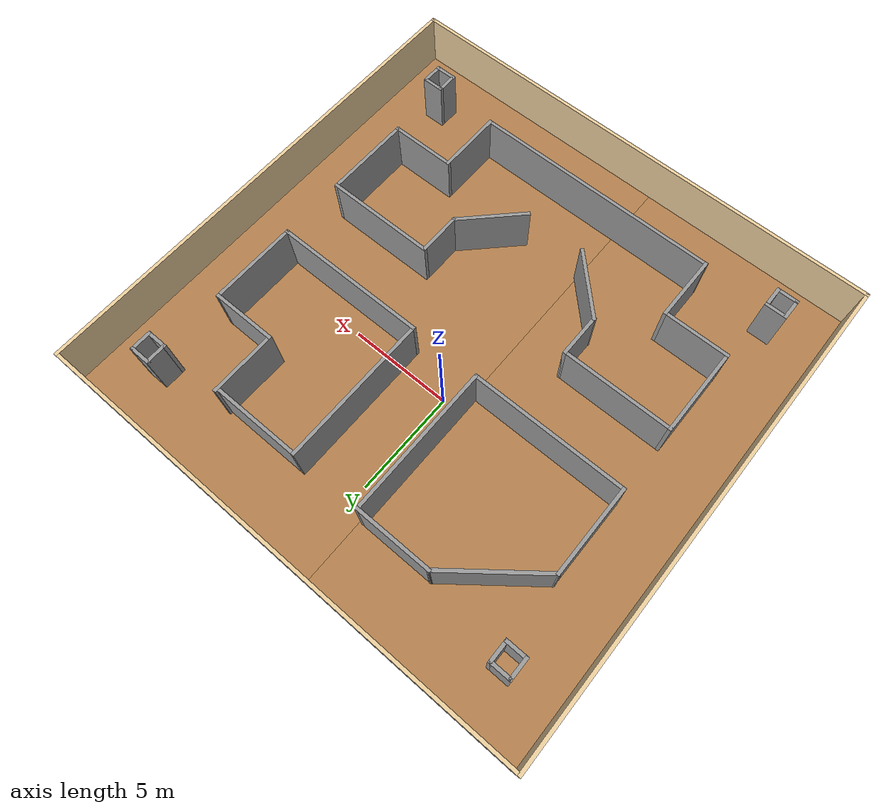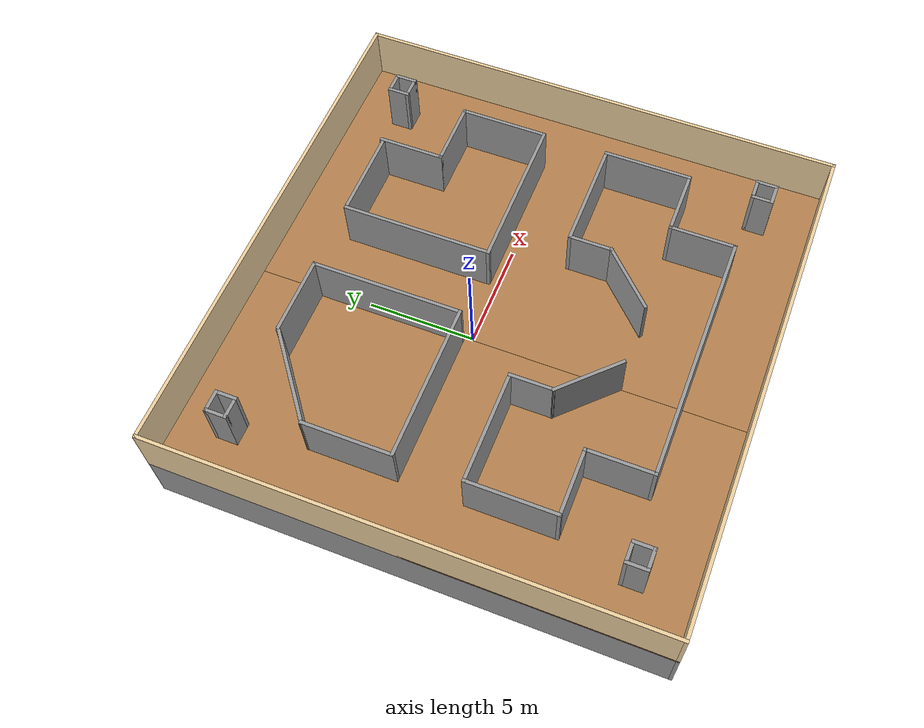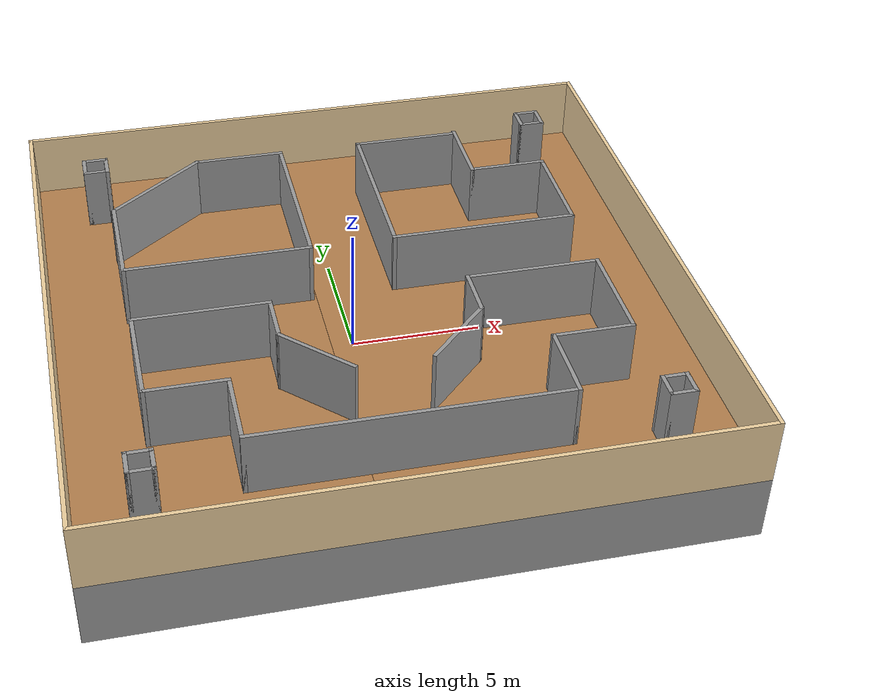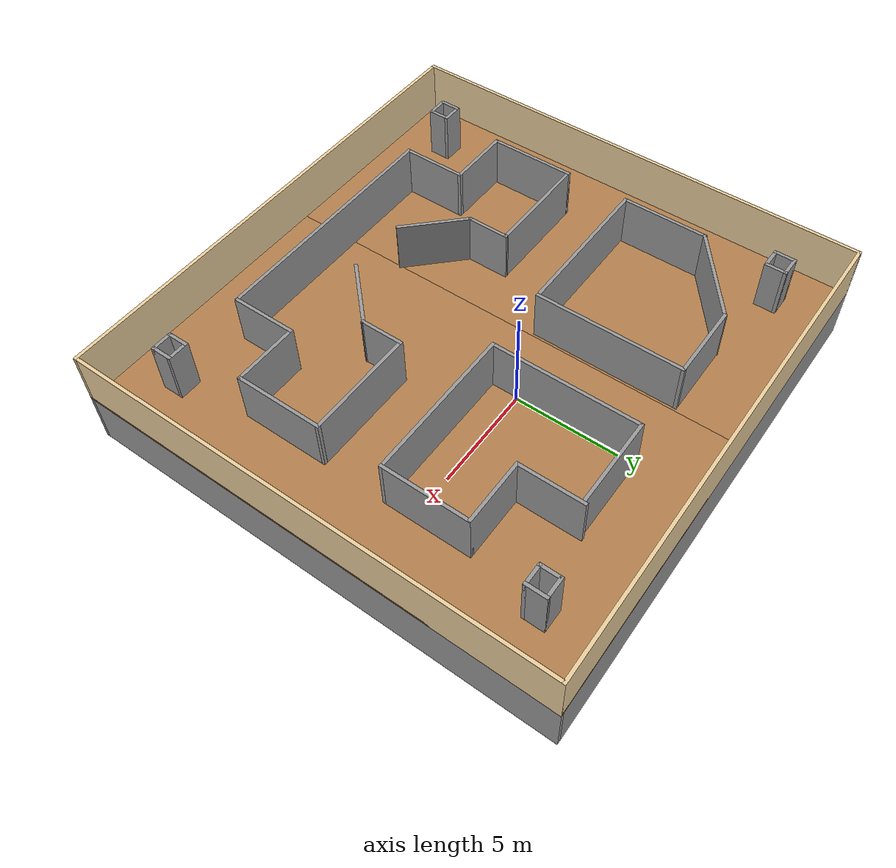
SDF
<sdf version="1.6">
 <world name="default">
  <gravity>0 0 -9.8</gravity>
  <model name="Test_Walls">
   <link name="Floor_6">
    <pose>0 -1.70356 2.5 0 -0 0</pose>
    <visual name="Floor_6_Visual_0">
     <pose>-6.40498 0 0.05 0 -0 0</pose>
     <geometry><box><size>9.94004 22.25 0.1</size></box></geometry>
     <material>
      <script><uri>file://media/materials/scripts/gazebo.material</uri><name>Gazebo/Wood</name></script>
      <ambient>0.756863 0.490196 0.0666667 1</ambient>
     </material>
     <meta><layer>1</layer></meta>
    </visual>
    <collision name="Floor_6_Collision_0">
     <geometry><box><size>9.94004 22.25 0.1</size></box></geometry>
     <pose>-6.40498 0 0.05 0 -0 0</pose>
    </collision>
    <visual name="Floor_6_Visual_1">
     <pose>4.97002 -0.04644 0.05 0 -0 0</pose>
     <geometry><box><size>12.81 22.1571 0.1</size></box></geometry>
     <material>
      <script><uri>file://media/materials/scripts/gazebo.material</uri><name>Gazebo/Wood</name></script>
      <ambient>0.756863 0.490196 0.0666667 1</ambient>
     </material>
     <meta><layer>1</layer></meta>
    </visual>
    <collision name="Floor_6_Collision_1">
     <geometry><box><size>12.81 22.1571 0.1</size></box></geometry>
     <pose>4.97002 -0.04644 0.05 0 -0 0</pose>
    </collision>
    <visual name="Floor_6_Visual_2">
     <pose>6.36213 11.0786 0.05 0 -0 0</pose>
     <geometry><box><size>10.0257 0.09288 0.1</size></box></geometry>
     <material>
      <script><uri>file://media/materials/scripts/gazebo.material</uri><name>Gazebo/Wood</name></script>
      <ambient>0.756863 0.490196 0.0666667 1</ambient>
     </material>
     <meta><layer>1</layer></meta>
    </visual>
    <collision name="Floor_6_Collision_2">
     <geometry><box><size>10.0257 0.09288 0.1</size></box></geometry>
     <pose>6.36213 11.0786 0.05 0 -0 0</pose>
    </collision>
   </link>
   <link name="Wall_105">
    <collision name="Wall_105_Collision">
     <geometry><box><size>22.75 0.15 2.5</size></box></geometry>
     <pose>0 0 1.25 0 -0 0</pose>
    </collision>
    <visual name="Wall_105_Visual">
     <pose>0 0 1.25 0 -0 0</pose>
     <geometry><box><size>22.75 0.15 2.5</size></box></geometry>
     <material>
      <script><uri>file://media/materials/scripts/gazebo.material</uri><name>Gazebo/Grey</name></script>
      <ambient>0.921569 0.807843 0.615686 1</ambient>
     </material>
     <meta><layer>1</layer></meta>
    </visual>
    <pose>0 9.34644 2.5 0 -0 0</pose>
   </link>
   <link name="Wall_175">
    <collision name="Wall_175_Collision">
     <geometry><box><size>1 0.15 2.5</size></box></geometry>
     <pose>0 0 1.25 0 -0 0</pose>
    </collision>
    <visual name="Wall_175_Visual">
     <pose>0 0 1.25 0 -0 0</pose>
     <geometry><box><size>1 0.15 2.5</size></box></geometry>
     <material>
      <script><uri>file://media/materials/scripts/gazebo.material</uri><name>Gazebo/Grey</name></script>
      <ambient>1 1 1 1</ambient>
     </material>
     <meta><layer>1</layer></meta>
    </visual>
    <pose>-8.46646 6.92092 2.5 0 -0 1.5708</pose>
   </link>
   <link name="Wall_176">
    <collision name="Wall_176_Collision">
     <geometry><box><size>1 0.15 2.5</size></box></geometry>
     <pose>0 0 1.25 0 -0 0</pose>
    </collision>
    <visual name="Wall_176_Visual">
     <pose>0 0 1.25 0 -0 0</pose>
     <geometry><box><size>1 0.15 2.5</size></box></geometry>
     <material>
      <script><uri>file://media/materials/scripts/gazebo.material</uri><name>Gazebo/Grey</name></script>
      <ambient>1 1 1 1</ambient>
     </material>
     <meta><layer>1</layer></meta>
    </visual>
    <pose>-8.89146 7.34592 2.5 0 -0 3.14159</pose>
   </link>
   <link name="Wall_177">
    <collision name="Wall_177_Collision">
     <geometry><box><size>1 0.15 2.5</size></box></geometry>
     <pose>0 0 1.25 0 -0 0</pose>
    </collision>
    <visual name="Wall_177_Visual">
     <pose>0 0 1.25 0 -0 0</pose>
     <geometry><box><size>1 0.15 2.5</size></box></geometry>
     <material>
      <script><uri>file://media/materials/scripts/gazebo.material</uri><name>Gazebo/Grey</name></script>
      <ambient>1 1 1 1</ambient>
     </material>
     <meta><layer>1</layer></meta>
    </visual>
    <pose>-9.31646 6.92092 2.5 0 -0 -1.5708</pose>
   </link>
   <link name="Wall_178">
    <collision name="Wall_178_Collision">
     <geometry><box><size>1 0.15 2.5</size></box></geometry>
     <pose>0 0 1.25 0 -0 0</pose>
    </collision>
    <visual name="Wall_178_Visual">
     <pose>0 0 1.25 0 -0 0</pose>
     <geometry><box><size>1 0.15 2.5</size></box></geometry>
     <material>
      <script><uri>file://media/materials/scripts/gazebo.material</uri><name>Gazebo/Grey</name></script>
      <ambient>1 1 1 1</ambient>
     </material>
     <meta><layer>1</layer></meta>
    </visual>
    <pose>-8.89146 6.49592 2.5 0 -0 0</pose>
   </link>
   <link name="Wall_180">
    <collision name="Wall_180_Collision">
     <geometry><box><size>1 0.15 2.5</size></box></geometry>
     <pose>0 0 1.25 0 -0 0</pose>
    </collision>
    <visual name="Wall_180_Visual">
     <pose>0 0 1.25 0 -0 0</pose>
     <geometry><box><size>1 0.15 2.5</size></box></geometry>
     <material>
      <script><uri>file://media/materials/scripts/gazebo.material</uri><name>Gazebo/Grey</name></script>
      <ambient>1 1 1 1</ambient>
     </material>
     <meta><layer>1</layer></meta>
    </visual>
    <pose>8.38354 6.92092 2.5 0 -0 1.5708</pose>
   </link>
   <link name="Wall_181">
    <collision name="Wall_181_Collision">
     <geometry><box><size>1 0.15 2.5</size></box></geometry>
     <pose>0 0 1.25 0 -0 0</pose>
    </collision>
    <visual name="Wall_181_Visual">
     <pose>0 0 1.25 0 -0 0</pose>
     <geometry><box><size>1 0.15 2.5</size></box></geometry>
     <material>
      <script><uri>file://media/materials/scripts/gazebo.material</uri><name>Gazebo/Grey</name></script>
      <ambient>1 1 1 1</ambient>
     </material>
     <meta><layer>1</layer></meta>
    </visual>
    <pose>8.80854 7.34592 2.5 0 -0 0</pose>
   </link>
   <link name="Wall_182">
    <collision name="Wall_182_Collision">
     <geometry><box><size>1 0.15 2.5</size></box></geometry>
     <pose>0 0 1.25 0 -0 0</pose>
    </collision>
    <visual name="Wall_182_Visual">
     <pose>0 0 1.25 0 -0 0</pose>
     <geometry><box><size>1 0.15 2.5</size></box></geometry>
     <material>
      <script><uri>file://media/materials/scripts/gazebo.material</uri><name>Gazebo/Grey</name></script>
      <ambient>1 1 1 1</ambient>
     </material>
     <meta><layer>1</layer></meta>
    </visual>
    <pose>9.23354 6.92092 2.5 0 -0 -1.5708</pose>
   </link>
   <link name="Wall_183">
    <collision name="Wall_183_Collision">
     <geometry><box><size>1 0.15 2.5</size></box></geometry>
     <pose>0 0 1.25 0 -0 0</pose>
    </collision>
    <visual name="Wall_183_Visual">
     <pose>0 0 1.25 0 -0 0</pose>
     <geometry><box><size>1 0.15 2.5</size></box></geometry>
     <material>
      <script><uri>file://media/materials/scripts/gazebo.material</uri><name>Gazebo/Grey</name></script>
      <ambient>1 1 1 1</ambient>
     </material>
     <meta><layer>1</layer></meta>
    </visual>
    <pose>8.80854 6.49592 2.5 0 -0 3.14159</pose>
   </link>
   <link name="Wall_185">
    <collision name="Wall_185_Collision">
     <geometry><box><size>1 0.15 2.5</size></box></geometry>
     <pose>0 0 1.25 0 -0 0</pose>
    </collision>
    <visual name="Wall_185_Visual">
     <pose>0 0 1.25 0 -0 0</pose>
     <geometry><box><size>1 0.15 2.5</size></box></geometry>
     <material>
      <script><uri>file://media/materials/scripts/gazebo.material</uri><name>Gazebo/Grey</name></script>
      <ambient>1 1 1 1</ambient>
     </material>
     <meta><layer>1</layer></meta>
    </visual>
    <pose>-8.89146 -9.85408 2.5 0 -0 3.14159</pose>
   </link>
   <link name="Wall_186">
    <collision name="Wall_186_Collision">
     <geometry><box><size>1 0.15 2.5</size></box></geometry>
     <pose>0 0 1.25 0 -0 0</pose>
    </collision>
    <visual name="Wall_186_Visual">
     <pose>0 0 1.25 0 -0 0</pose>
     <geometry><box><size>1 0.15 2.5</size></box></geometry>
     <material>
      <script><uri>file://media/materials/scripts/gazebo.material</uri><name>Gazebo/Grey</name></script>
      <ambient>1 1 1 1</ambient>
     </material>
     <meta><layer>1</layer></meta>
    </visual>
    <pose>-9.31646 -10.2791 2.5 0 -0 -1.5708</pose>
   </link>
   <link name="Wall_187">
    <collision name="Wall_187_Collision">
     <geometry><box><size>1 0.15 2.5</size></box></geometry>
     <pose>0 0 1.25 0 -0 0</pose>
    </collision>
    <visual name="Wall_187_Visual">
     <pose>0 0 1.25 0 -0 0</pose>
     <geometry><box><size>1 0.15 2.5</size></box></geometry>
     <material>
      <script><uri>file://media/materials/scripts/gazebo.material</uri><name>Gazebo/Grey</name></script>
      <ambient>1 1 1 1</ambient>
     </material>
     <meta><layer>1</layer></meta>
    </visual>
    <pose>-8.89146 -10.7041 2.5 0 -0 0</pose>
   </link>
   <link name="Wall_188">
    <collision name="Wall_188_Collision">
     <geometry><box><size>1 0.15 2.5</size></box></geometry>
     <pose>0 0 1.25 0 -0 0</pose>
    </collision>
    <visual name="Wall_188_Visual">
     <pose>0 0 1.25 0 -0 0</pose>
     <geometry><box><size>1 0.15 2.5</size></box></geometry>
     <material>
      <script><uri>file://media/materials/scripts/gazebo.material</uri><name>Gazebo/Grey</name></script>
      <ambient>1 1 1 1</ambient>
     </material>
     <meta><layer>1</layer></meta>
    </visual>
    <pose>-8.46646 -10.2791 2.5 0 -0 1.5708</pose>
   </link>
   <link name="Wall_190">
    <collision name="Wall_190_Collision">
     <geometry><box><size>1 0.15 2.5</size></box></geometry>
     <pose>0 0 1.25 0 -0 0</pose>
    </collision>
    <visual name="Wall_190_Visual">
     <pose>0 0 1.25 0 -0 0</pose>
     <geometry><box><size>1 0.15 2.5</size></box></geometry>
     <material>
      <script><uri>file://media/materials/scripts/gazebo.material</uri><name>Gazebo/Grey</name></script>
      <ambient>1 1 1 1</ambient>
     </material>
     <meta><layer>1</layer></meta>
    </visual>
    <pose>8.38354 -10.2791 2.5 0 -0 -1.5708</pose>
   </link>
   <link name="Wall_191">
    <collision name="Wall_191_Collision">
     <geometry><box><size>1 0.15 2.5</size></box></geometry>
     <pose>0 0 1.25 0 -0 0</pose>
    </collision>
    <visual name="Wall_191_Visual">
     <pose>0 0 1.25 0 -0 0</pose>
     <geometry><box><size>1 0.15 2.5</size></box></geometry>
     <material>
      <script><uri>file://media/materials/scripts/gazebo.material</uri><name>Gazebo/Grey</name></script>
      <ambient>1 1 1 1</ambient>
     </material>
     <meta><layer>1</layer></meta>
    </visual>
    <pose>8.80854 -10.7041 2.5 0 -0 0</pose>
   </link>
   <link name="Wall_192">
    <collision name="Wall_192_Collision">
     <geometry><box><size>1 0.15 2.5</size></box></geometry>
     <pose>0 0 1.25 0 -0 0</pose>
    </collision>
    <visual name="Wall_192_Visual">
     <pose>0 0 1.25 0 -0 0</pose>
     <geometry><box><size>1 0.15 2.5</size></box></geometry>
     <material>
      <script><uri>file://media/materials/scripts/gazebo.material</uri><name>Gazebo/Grey</name></script>
      <ambient>1 1 1 1</ambient>
     </material>
     <meta><layer>1</layer></meta>
    </visual>
    <pose>9.23354 -10.2791 2.5 0 -0 1.5708</pose>
   </link>
   <link name="Wall_193">
    <collision name="Wall_193_Collision">
     <geometry><box><size>1 0.15 2.5</size></box></geometry>
     <pose>0 0 1.25 0 -0 0</pose>
    </collision>
    <visual name="Wall_193_Visual">
     <pose>0 0 1.25 0 -0 0</pose>
     <geometry><box><size>1 0.15 2.5</size></box></geometry>
     <material>
      <script><uri>file://media/materials/scripts/gazebo.material</uri><name>Gazebo/Grey</name></script>
      <ambient>1 1 1 1</ambient>
     </material>
     <meta><layer>1</layer></meta>
    </visual>
    <pose>8.80854 -9.85408 2.5 0 -0 3.14159</pose>
   </link>
   <link name="Wall_196">
    <collision name="Wall_196_Collision">
     <geometry><box><size>3 0.15 2.5</size></box></geometry>
     <pose>0 0 1.25 0 -0 0</pose>
    </collision>
    <visual name="Wall_196_Visual">
     <pose>0 0 1.25 0 -0 0</pose>
     <geometry><box><size>3 0.15 2.5</size></box></geometry>
     <material>
      <script><uri>file://media/materials/scripts/gazebo.material</uri><name>Gazebo/Grey</name></script>
      <ambient>1 1 1 1</ambient>
     </material>
     <meta><layer>1</layer></meta>
    </visual>
    <pose>-5.61646 -8.42908 2.5 0 -0 1.5708</pose>
   </link>
   <link name="Wall_197">
    <collision name="Wall_197_Collision">
     <geometry><box><size>3 0.15 2.5</size></box></geometry>
     <pose>0 0 1.25 0 -0 0</pose>
    </collision>
    <visual name="Wall_197_Visual">
     <pose>0 0 1.25 0 -0 0</pose>
     <geometry><box><size>3 0.15 2.5</size></box></geometry>
     <material>
      <script><uri>file://media/materials/scripts/gazebo.material</uri><name>Gazebo/Grey</name></script>
      <ambient>1 1 1 1</ambient>
     </material>
     <meta><layer>1</layer></meta>
    </visual>
    <pose>-7.04146 -7.00408 2.5 0 -0 3.14159</pose>
   </link>
   <link name="Wall_204">
    <collision name="Wall_204_Collision">
     <geometry><box><size>3 0.15 2.5</size></box></geometry>
     <pose>0 0 1.25 0 -0 0</pose>
    </collision>
    <visual name="Wall_204_Visual">
     <pose>0 0 1.25 0 -0 0</pose>
     <geometry><box><size>3 0.15 2.5</size></box></geometry>
     <material>
      <script><uri>file://media/materials/scripts/gazebo.material</uri><name>Gazebo/Grey</name></script>
      <ambient>1 1 1 1</ambient>
     </material>
     <meta><layer>1</layer></meta>
    </visual>
    <pose>5.53354 5.07092 2.5 0 -0 -1.5708</pose>
   </link>
   <link name="Wall_205">
    <collision name="Wall_205_Collision">
     <geometry><box><size>3 0.15 2.5</size></box></geometry>
     <pose>0 0 1.25 0 -0 0</pose>
    </collision>
    <visual name="Wall_205_Visual">
     <pose>0 0 1.25 0 -0 0</pose>
     <geometry><box><size>3 0.15 2.5</size></box></geometry>
     <material>
      <script><uri>file://media/materials/scripts/gazebo.material</uri><name>Gazebo/Grey</name></script>
      <ambient>1 1 1 1</ambient>
     </material>
     <meta><layer>1</layer></meta>
    </visual>
    <pose>6.95854 3.64592 2.5 0 -0 0</pose>
   </link>
   <link name="Wall_208">
    <collision name="Wall_208_Collision">
     <geometry><box><size>3 0.15 2.5</size></box></geometry>
     <pose>0 0 1.25 0 -0 0</pose>
    </collision>
    <visual name="Wall_208_Visual">
     <pose>0 0 1.25 0 -0 0</pose>
     <geometry><box><size>3 0.15 2.5</size></box></geometry>
     <material>
      <script><uri>file://media/materials/scripts/gazebo.material</uri><name>Gazebo/Grey</name></script>
      <ambient>1 1 1 1</ambient>
     </material>
     <meta><layer>1</layer></meta>
    </visual>
    <pose>6.95854 -7.00408 2.5 0 -0 3.14159</pose>
   </link>
   <link name="Wall_209">
    <collision name="Wall_209_Collision">
     <geometry><box><size>3 0.15 2.5</size></box></geometry>
     <pose>0 0 1.25 0 -0 0</pose>
    </collision>
    <visual name="Wall_209_Visual">
     <pose>0 0 1.25 0 -0 0</pose>
     <geometry><box><size>3 0.15 2.5</size></box></geometry>
     <material>
      <script><uri>file://media/materials/scripts/gazebo.material</uri><name>Gazebo/Grey</name></script>
      <ambient>1 1 1 1</ambient>
     </material>
     <meta><layer>1</layer></meta>
    </visual>
    <pose>5.53354 -8.42908 2.5 0 -0 -1.5708</pose>
   </link>
   <link name="Wall_211">
    <collision name="Wall_211_Collision">
     <geometry><box><size>11.25 0.15 2.5</size></box></geometry>
     <pose>0 0 1.25 0 -0 0</pose>
    </collision>
    <visual name="Wall_211_Visual">
     <pose>0 0 1.25 0 -0 0</pose>
     <geometry><box><size>11.25 0.15 2.5</size></box></geometry>
     <material>
      <script><uri>file://media/materials/scripts/gazebo.material</uri><name>Gazebo/Grey</name></script>
      <ambient>1 1 1 1</ambient>
     </material>
     <meta><layer>1</layer></meta>
    </visual>
    <pose>-0.066457 -9.85408 2.5 0 -0 0</pose>
   </link>
   <link name="Wall_213">
    <collision name="Wall_213_Collision">
     <geometry><box><size>4 0.15 2.5</size></box></geometry>
     <pose>0 0 1.25 0 -0 0</pose>
    </collision>
    <visual name="Wall_213_Visual">
     <pose>0 0 1.25 0 -0 0</pose>
     <geometry><box><size>4 0.15 2.5</size></box></geometry>
     <material>
      <script><uri>file://media/materials/scripts/gazebo.material</uri><name>Gazebo/Grey</name></script>
      <ambient>1 1 1 1</ambient>
     </material>
     <meta><layer>1</layer></meta>
    </visual>
    <pose>-8.46646 -5.07908 2.5 0 -0 1.5708</pose>
   </link>
   <link name="Wall_214">
    <collision name="Wall_214_Collision">
     <geometry><box><size>5 0.15 2.5</size></box></geometry>
     <pose>0 0 1.25 0 -0 0</pose>
    </collision>
    <visual name="Wall_214_Visual">
     <pose>0 0 1.25 0 -0 0</pose>
     <geometry><box><size>5 0.15 2.5</size></box></geometry>
     <material>
      <script><uri>file://media/materials/scripts/gazebo.material</uri><name>Gazebo/Grey</name></script>
      <ambient>1 1 1 1</ambient>
     </material>
     <meta><layer>1</layer></meta>
    </visual>
    <pose>-6.04146 -3.15408 2.5 0 -0 0</pose>
   </link>
   <link name="Wall_217">
    <collision name="Wall_217_Collision">
     <geometry><box><size>2 0.15 2.5</size></box></geometry>
     <pose>0 0 1.25 0 -0 0</pose>
    </collision>
    <visual name="Wall_217_Visual">
     <pose>0 0 1.25 0 -0 0</pose>
     <geometry><box><size>2 0.15 2.5</size></box></geometry>
     <material>
      <script><uri>file://media/materials/scripts/gazebo.material</uri><name>Gazebo/Grey</name></script>
      <ambient>1 1 1 1</ambient>
     </material>
     <meta><layer>1</layer></meta>
    </visual>
    <pose>-3.61646 -4.07908 2.5 0 -0 -1.5708</pose>
   </link>
   <link name="Wall_219">
    <collision name="Wall_219_Collision">
     <geometry><box><size>4 0.15 2.5</size></box></geometry>
     <pose>0 0 1.25 0 -0 0</pose>
    </collision>
    <visual name="Wall_219_Visual">
     <pose>0 0 1.25 0 -0 0</pose>
     <geometry><box><size>4 0.15 2.5</size></box></geometry>
     <material>
      <script><uri>file://media/materials/scripts/gazebo.material</uri><name>Gazebo/Grey</name></script>
      <ambient>1 1 1 1</ambient>
     </material>
     <meta><layer>1</layer></meta>
    </visual>
    <pose>8.38354 -5.07908 2.5 0 -0 1.5708</pose>
   </link>
   <link name="Wall_220">
    <collision name="Wall_220_Collision">
     <geometry><box><size>5 0.15 2.5</size></box></geometry>
     <pose>0 0 1.25 0 -0 0</pose>
    </collision>
    <visual name="Wall_220_Visual">
     <pose>0 0 1.25 0 -0 0</pose>
     <geometry><box><size>5 0.15 2.5</size></box></geometry>
     <material>
      <script><uri>file://media/materials/scripts/gazebo.material</uri><name>Gazebo/Grey</name></script>
      <ambient>1 1 1 1</ambient>
     </material>
     <meta><layer>1</layer></meta>
    </visual>
    <pose>5.95854 -3.15408 2.5 0 -0 3.14159</pose>
   </link>
   <link name="Wall_221">
    <collision name="Wall_221_Collision">
     <geometry><box><size>2 0.15 2.5</size></box></geometry>
     <pose>0 0 1.25 0 -0 0</pose>
    </collision>
    <visual name="Wall_221_Visual">
     <pose>0 0 1.25 0 -0 0</pose>
     <geometry><box><size>2 0.15 2.5</size></box></geometry>
     <material>
      <script><uri>file://media/materials/scripts/gazebo.material</uri><name>Gazebo/Grey</name></script>
      <ambient>1 1 1 1</ambient>
     </material>
     <meta><layer>1</layer></meta>
    </visual>
    <pose>3.53354 -4.07908 2.5 0 -0 -1.5708</pose>
   </link>
   <link name="Wall_223">
    <collision name="Wall_223_Collision">
     <geometry><box><size>4 0.15 2.5</size></box></geometry>
     <pose>0 0 1.25 0 -0 0</pose>
    </collision>
    <visual name="Wall_223_Visual">
     <pose>0 0 1.25 0 -0 0</pose>
     <geometry><box><size>4 0.15 2.5</size></box></geometry>
     <material>
      <script><uri>file://media/materials/scripts/gazebo.material</uri><name>Gazebo/Grey</name></script>
      <ambient>1 1 1 1</ambient>
     </material>
     <meta><layer>1</layer></meta>
    </visual>
    <pose>-8.46646 1.72092 2.5 0 -0 -1.5708</pose>
   </link>
   <link name="Wall_246">
    <collision name="Wall_246_Collision">
     <geometry><box><size>7 0.15 2.5</size></box></geometry>
     <pose>0 0 1.25 0 -0 0</pose>
    </collision>
    <visual name="Wall_246_Visual">
     <pose>0 0 1.25 0 -0 0</pose>
     <geometry><box><size>7 0.15 2.5</size></box></geometry>
     <material>
      <script><uri>file://media/materials/scripts/gazebo.material</uri><name>Gazebo/Grey</name></script>
      <ambient>1 1 1 1</ambient>
     </material>
     <meta><layer>1</layer></meta>
    </visual>
    <pose>-5.04146 -0.204076 2.5 0 -0 0</pose>
   </link>
   <link name="Wall_247">
    <collision name="Wall_247_Collision">
     <geometry><box><size>6.75 0.15 2.5</size></box></geometry>
     <pose>0 0 1.25 0 -0 0</pose>
    </collision>
    <visual name="Wall_247_Visual">
     <pose>0 0 1.25 0 -0 0</pose>
     <geometry><box><size>6.75 0.15 2.5</size></box></geometry>
     <material>
      <script><uri>file://media/materials/scripts/gazebo.material</uri><name>Gazebo/Grey</name></script>
      <ambient>1 1 1 1</ambient>
     </material>
     <meta><layer>1</layer></meta>
    </visual>
    <pose>-1.61646 3.09592 2.5 0 -0 1.5708</pose>
   </link>
   <link name="Wall_251">
    <collision name="Wall_251_Collision">
     <geometry><box><size>3.5 0.15 2.5</size></box></geometry>
     <pose>0 0 1.25 0 -0 0</pose>
    </collision>
    <visual name="Wall_251_Visual">
     <pose>0 0 1.25 0 -0 0</pose>
     <geometry><box><size>3.5 0.15 2.5</size></box></geometry>
     <material>
      <script><uri>file://media/materials/scripts/gazebo.material</uri><name>Gazebo/Grey</name></script>
      <ambient>1 1 1 1</ambient>
     </material>
     <meta><layer>1</layer></meta>
    </visual>
    <pose>-3.29146 6.39592 2.5 0 -0 3.14159</pose>
   </link>
   <link name="Wall_254">
    <collision name="Wall_254_Collision">
     <geometry><box><size>4.60112 0.15 2.5</size></box></geometry>
     <pose>0 0 1.25 0 -0 0</pose>
    </collision>
    <visual name="Wall_254_Visual">
     <pose>0 0 1.25 0 -0 0</pose>
     <geometry><box><size>4.60112 0.15 2.5</size></box></geometry>
     <material>
      <script><uri>file://media/materials/scripts/gazebo.material</uri><name>Gazebo/Grey</name></script>
      <ambient>1 1 1 1</ambient>
     </material>
     <meta><layer>1</layer></meta>
    </visual>
    <pose>-6.71646 5.02092 2.5 0 -0 0.665969</pose>
   </link>
   <link name="Wall_259">
    <collision name="Wall_259_Collision">
     <geometry><box><size>4 0.15 2.5</size></box></geometry>
     <pose>0 0 1.25 0 -0 0</pose>
    </collision>
    <visual name="Wall_259_Visual">
     <pose>0 0 1.25 0 -0 0</pose>
     <geometry><box><size>4 0.15 2.5</size></box></geometry>
     <material>
      <script><uri>file://media/materials/scripts/gazebo.material</uri><name>Gazebo/Grey</name></script>
      <ambient>1 1 1 1</ambient>
     </material>
     <meta><layer>1</layer></meta>
    </visual>
    <pose>8.38354 1.72092 2.5 0 -0 -1.5708</pose>
   </link>
   <link name="Wall_260">
    <collision name="Wall_260_Collision">
     <geometry><box><size>7 0.15 2.5</size></box></geometry>
     <pose>0 0 1.25 0 -0 0</pose>
    </collision>
    <visual name="Wall_260_Visual">
     <pose>0 0 1.25 0 -0 0</pose>
     <geometry><box><size>7 0.15 2.5</size></box></geometry>
     <material>
      <script><uri>file://media/materials/scripts/gazebo.material</uri><name>Gazebo/Grey</name></script>
      <ambient>1 1 1 1</ambient>
     </material>
     <meta><layer>1</layer></meta>
    </visual>
    <pose>4.95854 -0.204076 2.5 0 -0 3.14159</pose>
   </link>
   <link name="Wall_261">
    <collision name="Wall_261_Collision">
     <geometry><box><size>6.75 0.15 2.5</size></box></geometry>
     <pose>0 0 1.25 0 -0 0</pose>
    </collision>
    <visual name="Wall_261_Visual">
     <pose>0 0 1.25 0 -0 0</pose>
     <geometry><box><size>6.75 0.15 2.5</size></box></geometry>
     <material>
      <script><uri>file://media/materials/scripts/gazebo.material</uri><name>Gazebo/Grey</name></script>
      <ambient>1 1 1 1</ambient>
     </material>
     <meta><layer>1</layer></meta>
    </visual>
    <pose>1.53354 3.09592 2.5 0 -0 1.5708</pose>
   </link>
   <link name="Wall_262">
    <collision name="Wall_262_Collision">
     <geometry><box><size>4 0.15 2.5</size></box></geometry>
     <pose>0 0 1.25 0 -0 0</pose>
    </collision>
    <visual name="Wall_262_Visual">
     <pose>0 0 1.25 0 -0 0</pose>
     <geometry><box><size>4 0.15 2.5</size></box></geometry>
     <material>
      <script><uri>file://media/materials/scripts/gazebo.material</uri><name>Gazebo/Grey</name></script>
      <ambient>1 1 1 1</ambient>
     </material>
     <meta><layer>1</layer></meta>
    </visual>
    <pose>3.45854 6.39592 2.5 0 -0 0</pose>
   </link>
   <link name="Wall_266">
    <collision name="Wall_266_Collision">
     <geometry><box><size>3.25 0.15 2.5</size></box></geometry>
     <pose>0 0 1.25 0 -0 0</pose>
    </collision>
    <visual name="Wall_266_Visual">
     <pose>0 0 1.25 0 -0 0</pose>
     <geometry><box><size>3.25 0.15 2.5</size></box></geometry>
     <material>
      <script><uri>file://media/materials/scripts/gazebo.material</uri><name>Gazebo/Grey</name></script>
      <ambient>1 1 1 1</ambient>
     </material>
     <meta><layer>1</layer></meta>
    </visual>
    <pose>-2.52044 -6.10009 2.5 0 -0 -0.785398</pose>
   </link>
   <link name="Wall_268">
    <collision name="Wall_268_Collision">
     <geometry><box><size>3.25 0.15 2.5</size></box></geometry>
     <pose>0 0 1.25 0 -0 0</pose>
    </collision>
    <visual name="Wall_268_Visual">
     <pose>0 0 1.25 0 -0 0</pose>
     <geometry><box><size>3.25 0.15 2.5</size></box></geometry>
     <material>
      <script><uri>file://media/materials/scripts/gazebo.material</uri><name>Gazebo/Grey</name></script>
      <ambient>1 1 1 1</ambient>
     </material>
     <meta><layer>1</layer></meta>
    </visual>
    <pose>2.43753 -6.10009 2.5 0 -0 -2.35619</pose>
   </link>
   <link name="Wall_44">
    <collision name="Wall_44_Collision">
     <geometry><box><size>22.25 0.15 2.5</size></box></geometry>
     <pose>0 0 1.25 0 -0 0</pose>
    </collision>
    <visual name="Wall_44_Visual">
     <pose>0 0 1.25 0 -0 0</pose>
     <geometry><box><size>22.25 0.15 2.5</size></box></geometry>
     <material>
      <script><uri>file://media/materials/scripts/gazebo.material</uri><name>Gazebo/Grey</name></script>
      <ambient>1 1 1 1</ambient>
     </material>
     <meta><layer>0</layer></meta>
    </visual>
    <pose>11.3 -1.70356 0 0 -0 -1.5708</pose>
   </link>
   <link name="Wall_45">
    <collision name="Wall_45_Collision">
     <geometry><box><size>22.75 0.15 2.5</size></box></geometry>
     <pose>0 0 1.25 0 -0 0</pose>
    </collision>
    <visual name="Wall_45_Visual">
     <pose>0 0 1.25 0 -0 0</pose>
     <geometry><box><size>22.75 0.15 2.5</size></box></geometry>
     <material>
      <script><uri>file://media/materials/scripts/gazebo.material</uri><name>Gazebo/Grey</name></script>
      <ambient>1 1 1 1</ambient>
     </material>
     <meta><layer>0</layer></meta>
    </visual>
    <pose>0 -12.7536 0 0 -0 3.14159</pose>
   </link>
   <link name="Wall_46">
    <collision name="Wall_46_Collision">
     <geometry><box><size>22.25 0.15 2.5</size></box></geometry>
     <pose>0 0 1.25 0 -0 0</pose>
    </collision>
    <visual name="Wall_46_Visual">
     <pose>0 0 1.25 0 -0 0</pose>
     <geometry><box><size>22.25 0.15 2.5</size></box></geometry>
     <material>
      <script><uri>file://media/materials/scripts/gazebo.material</uri><name>Gazebo/Grey</name></script>
      <ambient>1 1 1 1</ambient>
     </material>
     <meta><layer>0</layer></meta>
    </visual>
    <pose>-11.3 -1.70356 0 0 -0 1.5708</pose>
   </link>
   <link name="Wall_79">
    <collision name="Wall_79_Collision">
     <geometry><box><size>22.75 0.15 2.5</size></box></geometry>
     <pose>0 0 1.25 0 -0 0</pose>
    </collision>
    <visual name="Wall_79_Visual">
     <pose>0 0 1.25 0 -0 0</pose>
     <geometry><box><size>22.75 0.15 2.5</size></box></geometry>
     <material>
      <script><uri>file://media/materials/scripts/gazebo.material</uri><name>Gazebo/Grey</name></script>
      <ambient>1 1 1 1</ambient>
     </material>
     <meta><layer>0</layer></meta>
    </visual>
    <pose>0 9.34644 0 0 -0 3.14159</pose>
   </link>
   <link name="Wall_95">
    <collision name="Wall_95_Collision">
     <geometry><box><size>22.25 0.15 2.5</size></box></geometry>
     <pose>0 0 1.25 0 -0 0</pose>
    </collision>
    <visual name="Wall_95_Visual">
     <pose>0 0 1.25 0 -0 0</pose>
     <geometry><box><size>22.25 0.15 2.5</size></box></geometry>
     <material>
      <script><uri>file://media/materials/scripts/gazebo.material</uri><name>Gazebo/Grey</name></script>
      <ambient>0.921569 0.807843 0.615686 1</ambient>
     </material>
     <meta><layer>1</layer></meta>
    </visual>
    <pose>11.3 -1.70356 2.5 0 -0 -1.5708</pose>
   </link>
   <link name="Wall_96">
    <collision name="Wall_96_Collision">
     <geometry><box><size>22.75 0.15 2.5</size></box></geometry>
     <pose>0 0 1.25 0 -0 0</pose>
    </collision>
    <visual name="Wall_96_Visual">
     <pose>0 0 1.25 0 -0 0</pose>
     <geometry><box><size>22.75 0.15 2.5</size></box></geometry>
     <material>
      <script><uri>file://media/materials/scripts/gazebo.material</uri><name>Gazebo/Grey</name></script>
      <ambient>0.921569 0.807843 0.615686 1</ambient>
     </material>
     <meta><layer>1</layer></meta>
    </visual>
    <pose>0 -12.7536 2.5 0 -0 3.14159</pose>
   </link>
   <link name="Wall_97">
    <collision name="Wall_97_Collision">
     <geometry><box><size>22.25 0.15 2.5</size></box></geometry>
     <pose>0 0 1.25 0 -0 0</pose>
    </collision>
    <visual name="Wall_97_Visual">
     <pose>0 0 1.25 0 -0 0</pose>
     <geometry><box><size>22.25 0.15 2.5</size></box></geometry>
     <material>
      <script><uri>file://media/materials/scripts/gazebo.material</uri><name>Gazebo/Grey</name></script>
      <ambient>0.921569 0.807843 0.615686 1</ambient>
     </material>
     <meta><layer>1</layer></meta>
    </visual>
    <pose>-11.3 -1.70356 2.5 0 -0 1.5708</pose>
   </link>
   <static>1</static>
  </model>
  <light name="sun" type="directional">
   <pose>0 0 10 0 -0 0</pose>
   <diffuse>0.8 0.8 0.8 1</diffuse>
   <specular>0.2 0.2 0.2 1</specular>
   <attenuation>
    <range>1000</range>
    <constant>0.9</constant>
    <linear>0.01</linear>
    <quadratic>0.001</quadratic>
   </attenuation>
   <direction>-0.5 0.1 -0.9</direction>
  </light>
  <physics type="ode">
   <max_step_size>0.001</max_step_size>
   <real_time_factor>1</real_time_factor>
   <real_time_update_rate>1000</real_time_update_rate>
  </physics>
  <scene><ambient>0.4 0.4 0.4 1</ambient><background>0.7 0.7 0.7 1</background><shadows>1</shadows></scene>
  <spherical_coordinates>
   <surface_model>EARTH_WGS84</surface_model>
   <latitude_deg>0</latitude_deg>
   <longitude_deg>0</longitude_deg>
   <elevation>0</elevation>
   <heading_deg>0</heading_deg>
  </spherical_coordinates>
 </world>
</sdf>
